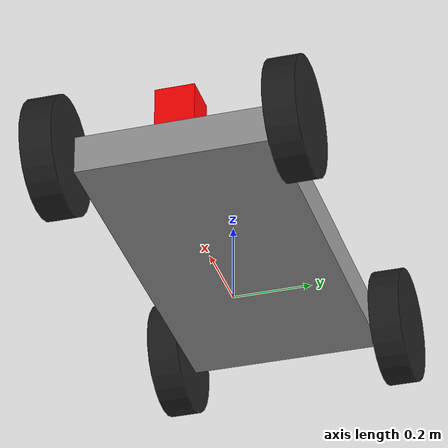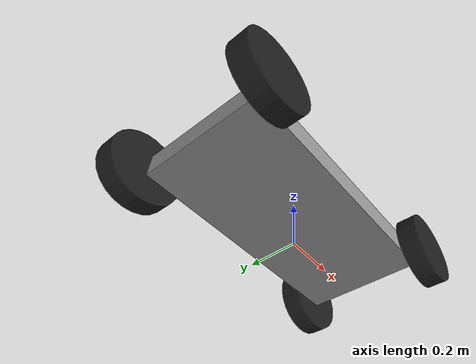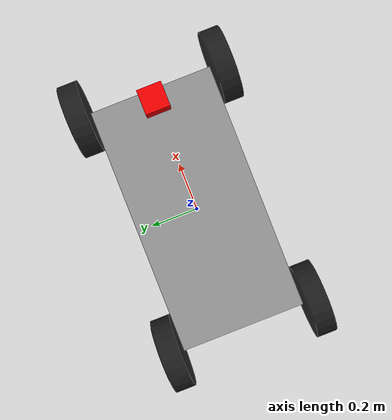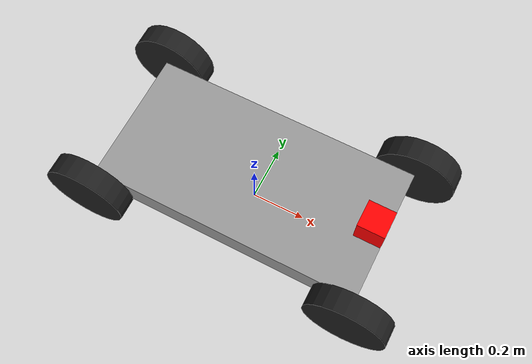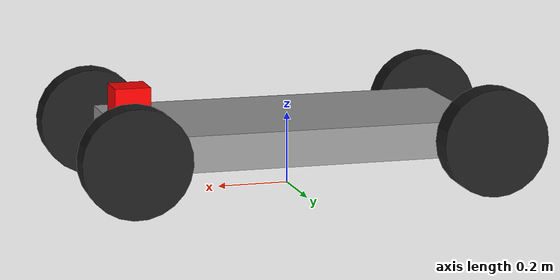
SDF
<?xml version="1.0" ?>

<sdf version="1.5">
  <model name="cart_front_steer">
    <link name="chassis">
      <pose>0 0 0.15  0 0 0</pose>
      <inertial>
        <pose>0 0 0  0 0 0</pose>
        <mass>5</mass>
        <inertia>
          <ixx>0.21666666666666667</ixx>
          <iyy>0.8416666666666667</iyy>
          <izz>1.0416666666666667</izz>
          <ixy>0</ixy>
          <ixz>0</ixz>
          <iyz>0</iyz>
        </inertia>
      </inertial>
      <collision name="collision">
        <geometry>
          <box>
            <size>1.0 0.5 0.1</size>
          </box>
        </geometry>
      </collision>
      <visual name="visual">
        <geometry>
          <box>
            <size>1.0 0.5 0.1</size>
          </box>
        </geometry>
        <material>
          <script>
            <uri>file://media/materials/scripts/gazebo.material</uri>
            <name>Gazebo/Grey</name>
          </script>
        </material>
      </visual>
    </link>

    <link name="wheel_front_left">
      <pose>0.5 0.298 0.15  -1.5707963267948966 -0.08726646259971647 0</pose>
      <inertial>
        <mass>0.5</mass>
        <inertia>
          <ixx>0.0030791666666666667</ixx>
          <iyy>0.0030791666666666667</iyy>
          <izz>0.005625</izz>
          <ixy>0</ixy>
          <ixz>0</ixz>
          <iyz>0</iyz>
        </inertia>
      </inertial>
      <collision name="collision">
        <geometry>
          <cylinder>
            <radius>0.15</radius>
            <length>0.08</length>
          </cylinder>
        </geometry>
      </collision>
      <visual name="visual">
        <geometry>
          <cylinder>
            <radius>0.15</radius>
            <length>0.08</length>
          </cylinder>
        </geometry>
        <material>
          <script>
            <uri>file://media/materials/scripts/gazebo.material</uri>
            <name>Gazebo/Black</name>
          </script>
        </material>
      </visual>
    </link>

    <joint name="wheel_front_left_steer_spin" type="fixed">
      <parent>chassis</parent>
      <child>wheel_front_left</child>
      <axis>
        <xyz>0 0 -1</xyz>
      </axis>
    </joint>

    <link name="wheel_front_right">
      <pose>0.5 -0.298 0.15  -1.5707963267948966 -0.08726646259971647 0</pose>
      <inertial>
        <mass>0.5</mass>
        <inertia>
          <ixx>0.0030791666666666667</ixx>
          <iyy>0.0030791666666666667</iyy>
          <izz>0.005625</izz>
          <ixy>0</ixy>
          <ixz>0</ixz>
          <iyz>0</iyz>
        </inertia>
      </inertial>
      <collision name="collision">
        <geometry>
          <cylinder>
            <radius>0.15</radius>
            <length>0.08</length>
          </cylinder>
        </geometry>
      </collision>
      <visual name="visual">
        <geometry>
          <cylinder>
            <radius>0.15</radius>
            <length>0.08</length>
          </cylinder>
        </geometry>
        <material>
          <script>
            <uri>file://media/materials/scripts/gazebo.material</uri>
            <name>Gazebo/Black</name>
          </script>
        </material>
      </visual>
    </link>

    <joint name="wheel_front_right_steer_spin" type="fixed">
      <parent>chassis</parent>
      <child>wheel_front_right</child>
      <axis>
        <xyz>0 0 1</xyz>
      </axis>
    </joint>

    <link name="wheel_rear_left">
      <pose>-0.5 0.298 0.15  -1.5707963267948966 0 0</pose>
      <inertial>
        <mass>0.5</mass>
        <inertia>
          <ixx>0.0030791666666666667</ixx>
          <iyy>0.0030791666666666667</iyy>
          <izz>0.005625</izz>
          <ixy>0</ixy>
          <ixz>0</ixz>
          <iyz>0</iyz>
        </inertia>
      </inertial>
      <collision name="collision">
        <geometry>
          <cylinder>
            <radius>0.15</radius>
            <length>0.08</length>
          </cylinder>
        </geometry>
      </collision>
      <visual name="visual">
        <geometry>
          <cylinder>
            <radius>0.15</radius>
            <length>0.08</length>
          </cylinder>
        </geometry>
        <material>
          <script>
            <uri>file://media/materials/scripts/gazebo.material</uri>
            <name>Gazebo/Black</name>
          </script>
        </material>
      </visual>
    </link>

    <joint name="wheel_rear_left_spin" type="fixed">
      <parent>chassis</parent>
      <child>wheel_rear_left</child>
      <axis>
        <xyz>0 0 -1</xyz>
      </axis>
    </joint>

    <link name="wheel_rear_right">
      <pose>-0.5 -0.298 0.15  -1.5707963267948966 0 0</pose>
      <inertial>
        <mass>0.5</mass>
        <inertia>
          <ixx>0.0030791666666666667</ixx>
          <iyy>0.0030791666666666667</iyy>
          <izz>0.005625</izz>
          <ixy>0</ixy>
          <ixz>0</ixz>
          <iyz>0</iyz>
        </inertia>
      </inertial>
      <collision name="collision">
        <geometry>
          <cylinder>
            <radius>0.15</radius>
            <length>0.08</length>
          </cylinder>
        </geometry>
      </collision>
      <visual name="visual">
        <geometry>
          <cylinder>
            <radius>0.15</radius>
            <length>0.08</length>
          </cylinder>
        </geometry>
        <material>
          <script>
            <uri>file://media/materials/scripts/gazebo.material</uri>
            <name>Gazebo/Black</name>
          </script>
        </material>
      </visual>
    </link>

    <joint name="wheel_rear_right_spin" type="fixed">
      <parent>chassis</parent>
      <child>wheel_rear_right</child>
      <axis>
        <xyz>0 0 1</xyz>
      </axis>
    </joint>

    <link name="laser_sensor_link">
      <pose>0.45 0 0.25 0 0 0</pose>
      <collision name="collision">
        <geometry>
          <box>
            <size>0.1 0.1 0.1</size>
          </box>
        </geometry>
      </collision>
      <visual name="visual">
        <geometry>
          <box>
            <size>0.1 0.1 0.1</size>
          </box>
        </geometry>
        <material name="orange">
          <ambient>1 0 0 1</ambient>
          <diffuse>1 0 0 1</diffuse>
          <specular>0.1 0.1 0.1 1</specular>
        </material>
      </visual>
      <sensor type="ray" name="ray1">
	<pose>0 0 0 0 0 0</pose>
        <update_rate>35.0</update_rate>
	<visualize>true</visualize>
        <ray name="laser_scan">
          <scan>
            <horizontal>
              <samples>360</samples>
              <resolution>1</resolution>
              <min_angle>-0.785398</min_angle>
              <max_angle>0.785398</max_angle>
            </horizontal>
          </scan>
          <range>
            <min>0.3</min>
            <max>2.0</max>
            <resolution>0.01</resolution>
          </range>
        </ray>
        <plugin name="laser_scan_controller" filename="libgazebo_ros_laser.so">
          <frameName>chassis</frameName>
          <topicName>scan</topicName>
        </plugin>
      </sensor>
    </link>

    <joint name="laser_sensor_joint" type="fixed">
      <parent>chassis</parent>
      <child>laser_sensor_link</child>
      <axis>
        <xyz>0 0 1</xyz>
      </axis>
    </joint>

    <plugin name="move_cart" filename="libmove_cart.so"/>
  </model>
</sdf>
